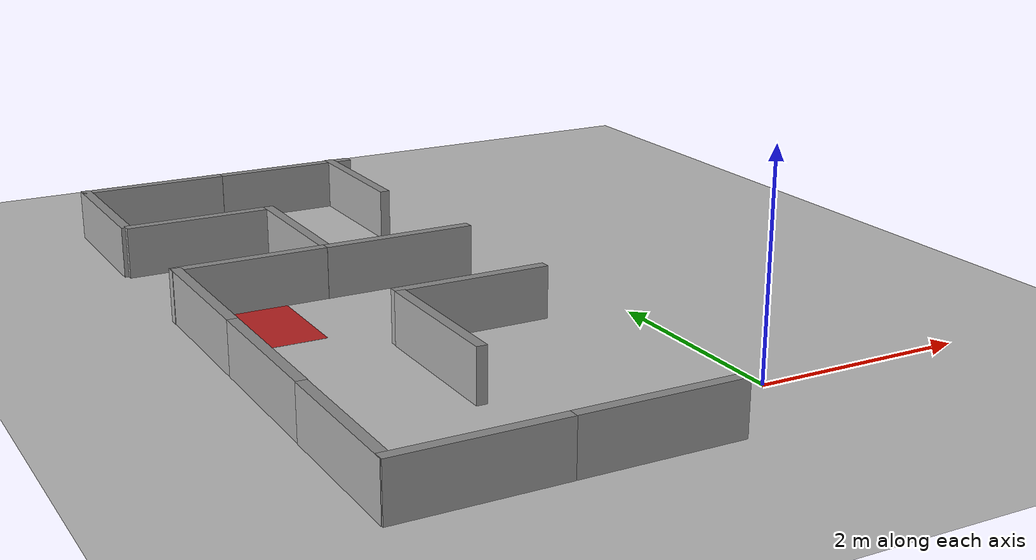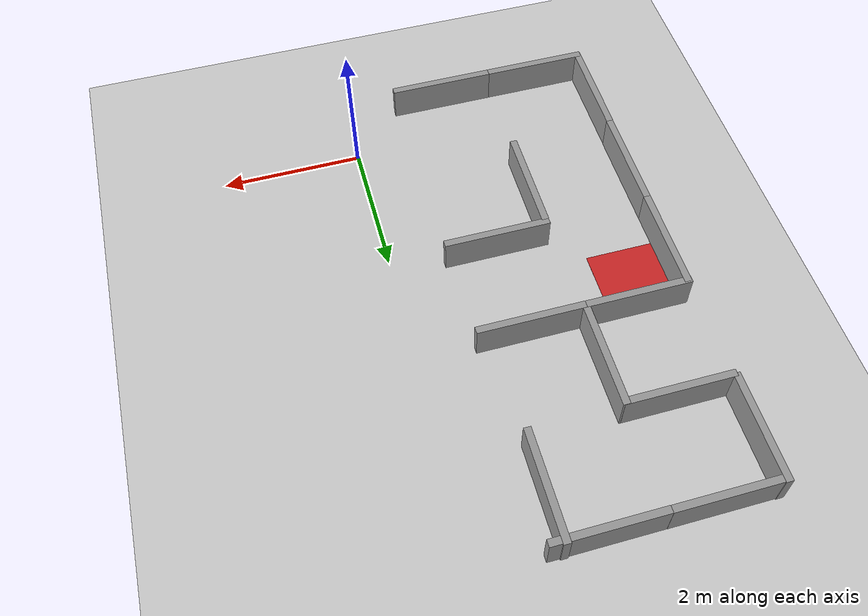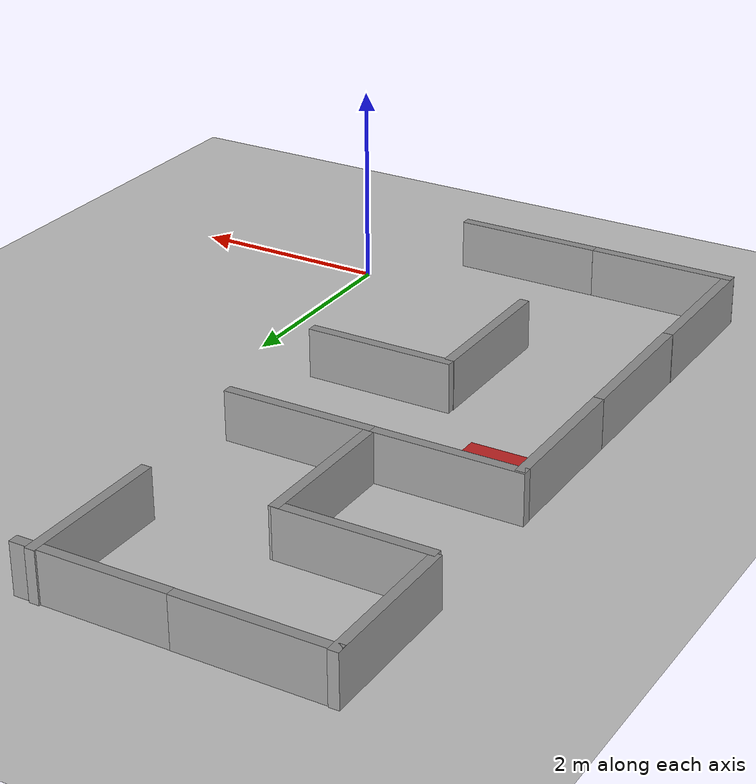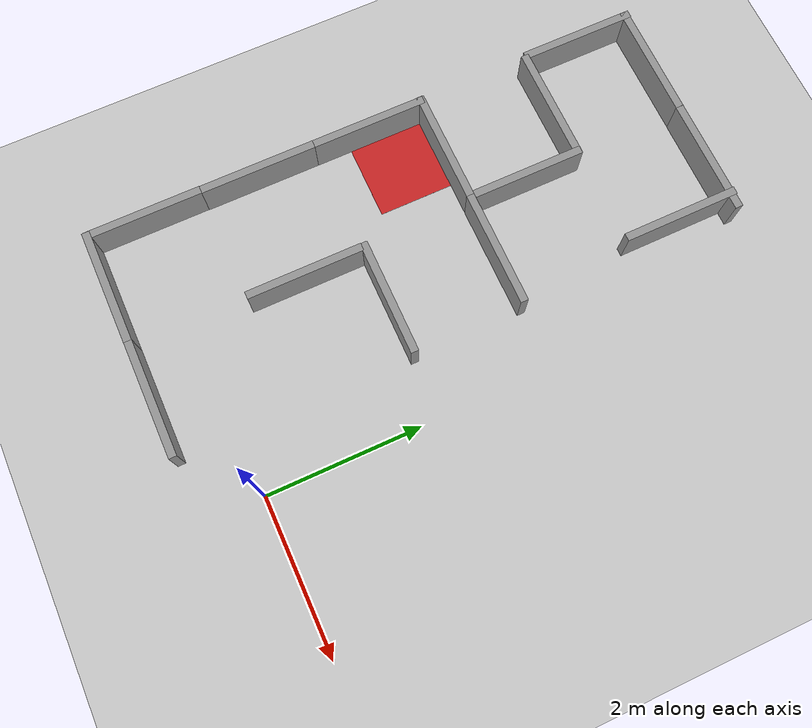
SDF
<sdf version="1.7">
 <world name="default">
  <model name="ground_plane">
   <static>1</static>
   <link name="link">
    <collision name="collision">
     <geometry><plane><normal>0 0 1</normal><size>100 100</size></plane></geometry>
     <surface>
      <contact><collide_bitmask>65535</collide_bitmask></contact>
      <friction><ode><mu>100</mu><mu2>50</mu2></ode></friction>
     </surface>
    </collision>
    <visual name="visual">
     <cast_shadows>0</cast_shadows>
     <geometry><plane><normal>0 0 1</normal><size>100 100</size></plane></geometry>
     <material>
      <script><uri>file://media/materials/scripts/gazebo.material</uri><name>Gazebo/Grey</name></script>
     </material>
    </visual>
   </link>
  </model>
  <model name="wall_big_clone_0_clone">
   <link name="link">
    <inertial>
     <mass>1</mass>
     <inertia>
      <ixx>0.166667</ixx>
      <ixy>0</ixy>
      <ixz>0</ixz>
      <iyy>0.166667</iyy>
      <iyz>0</iyz>
      <izz>0.166667</izz>
     </inertia>
    </inertial>
    <visual name="visual">
     <geometry><box><size>0.1 1.5 0.5</size></box></geometry>
     <material>
      <script><name>Gazebo/Grey</name><uri>file://media/materials/scripts/gazebo.material</uri></script>
      <shader type="pixel"><normal_map>__default__</normal_map></shader>
      <ambient>0.3 0.3 0.3 1</ambient>
      <diffuse>0.7 0.7 0.7 1</diffuse>
      <specular>0.01 0.01 0.01 1</specular>
      <emissive>0 0 0 1</emissive>
     </material>
    </visual>
    <collision name="collision">
     <geometry><box><size>0.1 1.5 0.5</size></box></geometry>
     <surface>
      <friction>
       <ode><mu>1</mu><mu2>1</mu2><fdir1>0 0 0</fdir1><slip1>0</slip1><slip2>0</slip2></ode>
       <torsional>
        <coefficient>1</coefficient>
        <patch_radius>0</patch_radius>
        <surface_radius>0</surface_radius>
        <use_patch_radius>1</use_patch_radius>
        <ode><slip>0</slip></ode>
       </torsional>
      </friction>
      <bounce><restitution_coefficient>0</restitution_coefficient><threshold>1e+06</threshold></bounce>
      <contact>
       <collide_without_contact>0</collide_without_contact>
       <collide_without_contact_bitmask>1</collide_without_contact_bitmask>
       <collide_bitmask>1</collide_bitmask>
       <ode>
        <soft_cfm>0</soft_cfm>
        <soft_erp>0.2</soft_erp>
        <kp>1e+13</kp>
        <kd>1</kd>
        <max_vel>0.01</max_vel>
        <min_depth>0</min_depth>
       </ode>
       <bullet>
        <split_impulse>1</split_impulse>
        <split_impulse_penetration_threshold>-0.01</split_impulse_penetration_threshold>
        <soft_cfm>0</soft_cfm>
        <soft_erp>0.2</soft_erp>
        <kp>1e+13</kp>
        <kd>1</kd>
       </bullet>
      </contact>
     </surface>
    </collision>
   </link>
   <static>1</static>
   <pose>-1.49254 2.24927 0.250003 1.1e-05 -0 1.5708</pose>
  </model>
  <model name="wall_big_clone_clone_0">
   <link name="link">
    <inertial>
     <mass>1</mass>
     <inertia>
      <ixx>0.166667</ixx>
      <ixy>0</ixy>
      <ixz>0</ixz>
      <iyy>0.166667</iyy>
      <iyz>0</iyz>
      <izz>0.166667</izz>
     </inertia>
    </inertial>
    <visual name="visual">
     <geometry><box><size>0.1 1.5 0.5</size></box></geometry>
     <material>
      <script><name>Gazebo/Grey</name><uri>file://media/materials/scripts/gazebo.material</uri></script>
      <shader type="pixel"><normal_map>__default__</normal_map></shader>
      <ambient>0.3 0.3 0.3 1</ambient>
      <diffuse>0.7 0.7 0.7 1</diffuse>
      <specular>0.01 0.01 0.01 1</specular>
      <emissive>0 0 0 1</emissive>
     </material>
    </visual>
    <collision name="collision">
     <geometry><box><size>0.1 1.5 0.5</size></box></geometry>
     <surface>
      <friction>
       <ode><mu>1</mu><mu2>1</mu2><fdir1>0 0 0</fdir1><slip1>0</slip1><slip2>0</slip2></ode>
       <torsional>
        <coefficient>1</coefficient>
        <patch_radius>0</patch_radius>
        <surface_radius>0</surface_radius>
        <use_patch_radius>1</use_patch_radius>
        <ode><slip>0</slip></ode>
       </torsional>
      </friction>
      <bounce><restitution_coefficient>0</restitution_coefficient><threshold>1e+06</threshold></bounce>
      <contact>
       <collide_without_contact>0</collide_without_contact>
       <collide_without_contact_bitmask>1</collide_without_contact_bitmask>
       <collide_bitmask>1</collide_bitmask>
       <ode>
        <soft_cfm>0</soft_cfm>
        <soft_erp>0.2</soft_erp>
        <kp>1e+13</kp>
        <kd>1</kd>
        <max_vel>0.01</max_vel>
        <min_depth>0</min_depth>
       </ode>
       <bullet>
        <split_impulse>1</split_impulse>
        <split_impulse_penetration_threshold>-0.01</split_impulse_penetration_threshold>
        <soft_cfm>0</soft_cfm>
        <soft_erp>0.2</soft_erp>
        <kp>1e+13</kp>
        <kd>1</kd>
       </bullet>
      </contact>
     </surface>
    </collision>
   </link>
   <static>1</static>
   <pose>-2.1978 1.46693 0.250003 1.2e-05 -0 0</pose>
  </model>
  <model name="wall_big_clone_1">
   <link name="link">
    <inertial>
     <mass>1</mass>
     <inertia>
      <ixx>0.166667</ixx>
      <ixy>0</ixy>
      <ixz>0</ixz>
      <iyy>0.166667</iyy>
      <iyz>0</iyz>
      <izz>0.166667</izz>
     </inertia>
    </inertial>
    <visual name="visual">
     <geometry><box><size>0.1 1.5 0.5</size></box></geometry>
     <material>
      <script><name>Gazebo/Grey</name><uri>file://media/materials/scripts/gazebo.material</uri></script>
      <shader type="pixel"><normal_map>__default__</normal_map></shader>
      <ambient>0.3 0.3 0.3 1</ambient>
      <diffuse>0.7 0.7 0.7 1</diffuse>
      <specular>0.01 0.01 0.01 1</specular>
      <emissive>0 0 0 1</emissive>
     </material>
    </visual>
    <collision name="collision">
     <geometry><box><size>0.1 1.5 0.5</size></box></geometry>
     <surface>
      <friction>
       <ode><mu>1</mu><mu2>1</mu2><fdir1>0 0 0</fdir1><slip1>0</slip1><slip2>0</slip2></ode>
       <torsional>
        <coefficient>1</coefficient>
        <patch_radius>0</patch_radius>
        <surface_radius>0</surface_radius>
        <use_patch_radius>1</use_patch_radius>
        <ode><slip>0</slip></ode>
       </torsional>
      </friction>
      <bounce><restitution_coefficient>0</restitution_coefficient><threshold>1e+06</threshold></bounce>
      <contact>
       <collide_without_contact>0</collide_without_contact>
       <collide_without_contact_bitmask>1</collide_without_contact_bitmask>
       <collide_bitmask>1</collide_bitmask>
       <ode>
        <soft_cfm>0</soft_cfm>
        <soft_erp>0.2</soft_erp>
        <kp>1e+13</kp>
        <kd>1</kd>
        <max_vel>0.01</max_vel>
        <min_depth>0</min_depth>
       </ode>
       <bullet>
        <split_impulse>1</split_impulse>
        <split_impulse_penetration_threshold>-0.01</split_impulse_penetration_threshold>
        <soft_cfm>0</soft_cfm>
        <soft_erp>0.2</soft_erp>
        <kp>1e+13</kp>
        <kd>1</kd>
       </bullet>
      </contact>
     </surface>
    </collision>
   </link>
   <static>1</static>
   <pose>-1.49951 -0.747119 0.250003 1.1e-05 -0 1.5708</pose>
  </model>
  <model name="wall_big_clone_2">
   <link name="link">
    <inertial>
     <mass>1</mass>
     <inertia>
      <ixx>0.166667</ixx>
      <ixy>0</ixy>
      <ixz>0</ixz>
      <iyy>0.166667</iyy>
      <iyz>0</iyz>
      <izz>0.166667</izz>
     </inertia>
    </inertial>
    <visual name="visual">
     <geometry><box><size>0.1 1.5 0.5</size></box></geometry>
     <material>
      <script><name>Gazebo/Grey</name><uri>file://media/materials/scripts/gazebo.material</uri></script>
      <shader type="pixel"><normal_map>__default__</normal_map></shader>
      <ambient>0.3 0.3 0.3 1</ambient>
      <diffuse>0.7 0.7 0.7 1</diffuse>
      <specular>0.01 0.01 0.01 1</specular>
      <emissive>0 0 0 1</emissive>
     </material>
    </visual>
    <collision name="collision">
     <geometry><box><size>0.1 1.5 0.5</size></box></geometry>
     <surface>
      <friction>
       <ode><mu>1</mu><mu2>1</mu2><fdir1>0 0 0</fdir1><slip1>0</slip1><slip2>0</slip2></ode>
       <torsional>
        <coefficient>1</coefficient>
        <patch_radius>0</patch_radius>
        <surface_radius>0</surface_radius>
        <use_patch_radius>1</use_patch_radius>
        <ode><slip>0</slip></ode>
       </torsional>
      </friction>
      <bounce><restitution_coefficient>0</restitution_coefficient><threshold>1e+06</threshold></bounce>
      <contact>
       <collide_without_contact>0</collide_without_contact>
       <collide_without_contact_bitmask>1</collide_without_contact_bitmask>
       <collide_bitmask>1</collide_bitmask>
       <ode>
        <soft_cfm>0</soft_cfm>
        <soft_erp>0.2</soft_erp>
        <kp>1e+13</kp>
        <kd>1</kd>
        <max_vel>0.01</max_vel>
        <min_depth>0</min_depth>
       </ode>
       <bullet>
        <split_impulse>1</split_impulse>
        <split_impulse_penetration_threshold>-0.01</split_impulse_penetration_threshold>
        <soft_cfm>0</soft_cfm>
        <soft_erp>0.2</soft_erp>
        <kp>1e+13</kp>
        <kd>1</kd>
       </bullet>
      </contact>
     </surface>
    </collision>
   </link>
   <static>1</static>
   <pose>-2.99702 -0.748054 0.250003 1.1e-05 -0 1.5708</pose>
  </model>
  <model name="wall_big_clone_clone_0_clone">
   <link name="link">
    <inertial>
     <mass>1</mass>
     <inertia>
      <ixx>0.166667</ixx>
      <ixy>0</ixy>
      <ixz>0</ixz>
      <iyy>0.166667</iyy>
      <iyz>0</iyz>
      <izz>0.166667</izz>
     </inertia>
    </inertial>
    <visual name="visual">
     <geometry><box><size>0.1 1.5 0.5</size></box></geometry>
     <material>
      <script><name>Gazebo/Grey</name><uri>file://media/materials/scripts/gazebo.material</uri></script>
      <shader type="pixel"><normal_map>__default__</normal_map></shader>
      <ambient>0.3 0.3 0.3 1</ambient>
      <diffuse>0.7 0.7 0.7 1</diffuse>
      <specular>0.01 0.01 0.01 1</specular>
      <emissive>0 0 0 1</emissive>
     </material>
    </visual>
    <collision name="collision">
     <geometry><box><size>0.1 1.5 0.5</size></box></geometry>
     <surface>
      <friction>
       <ode><mu>1</mu><mu2>1</mu2><fdir1>0 0 0</fdir1><slip1>0</slip1><slip2>0</slip2></ode>
       <torsional>
        <coefficient>1</coefficient>
        <patch_radius>0</patch_radius>
        <surface_radius>0</surface_radius>
        <use_patch_radius>1</use_patch_radius>
        <ode><slip>0</slip></ode>
       </torsional>
      </friction>
      <bounce><restitution_coefficient>0</restitution_coefficient><threshold>1e+06</threshold></bounce>
      <contact>
       <collide_without_contact>0</collide_without_contact>
       <collide_without_contact_bitmask>1</collide_without_contact_bitmask>
       <collide_bitmask>1</collide_bitmask>
       <ode>
        <soft_cfm>0</soft_cfm>
        <soft_erp>0.2</soft_erp>
        <kp>1e+13</kp>
        <kd>1</kd>
        <max_vel>0.01</max_vel>
        <min_depth>0</min_depth>
       </ode>
       <bullet>
        <split_impulse>1</split_impulse>
        <split_impulse_penetration_threshold>-0.01</split_impulse_penetration_threshold>
        <soft_cfm>0</soft_cfm>
        <soft_erp>0.2</soft_erp>
        <kp>1e+13</kp>
        <kd>1</kd>
       </bullet>
      </contact>
     </surface>
    </collision>
   </link>
   <static>1</static>
   <pose>-3.7015 -0.032045 0.250003 1.2e-05 -0 0</pose>
  </model>
  <model name="wall_big_clone_clone_0_clone_0">
   <link name="link">
    <inertial>
     <mass>1</mass>
     <inertia>
      <ixx>0.166667</ixx>
      <ixy>0</ixy>
      <ixz>0</ixz>
      <iyy>0.166667</iyy>
      <iyz>0</iyz>
      <izz>0.166667</izz>
     </inertia>
    </inertial>
    <visual name="visual">
     <geometry><box><size>0.1 1.5 0.5</size></box></geometry>
     <material>
      <script><name>Gazebo/Grey</name><uri>file://media/materials/scripts/gazebo.material</uri></script>
      <shader type="pixel"><normal_map>__default__</normal_map></shader>
      <ambient>0.3 0.3 0.3 1</ambient>
      <diffuse>0.7 0.7 0.7 1</diffuse>
      <specular>0.01 0.01 0.01 1</specular>
      <emissive>0 0 0 1</emissive>
     </material>
    </visual>
    <collision name="collision">
     <geometry><box><size>0.1 1.5 0.5</size></box></geometry>
     <surface>
      <friction>
       <ode><mu>1</mu><mu2>1</mu2><fdir1>0 0 0</fdir1><slip1>0</slip1><slip2>0</slip2></ode>
       <torsional>
        <coefficient>1</coefficient>
        <patch_radius>0</patch_radius>
        <surface_radius>0</surface_radius>
        <use_patch_radius>1</use_patch_radius>
        <ode><slip>0</slip></ode>
       </torsional>
      </friction>
      <bounce><restitution_coefficient>0</restitution_coefficient><threshold>1e+06</threshold></bounce>
      <contact>
       <collide_without_contact>0</collide_without_contact>
       <collide_without_contact_bitmask>1</collide_without_contact_bitmask>
       <collide_bitmask>1</collide_bitmask>
       <ode>
        <soft_cfm>0</soft_cfm>
        <soft_erp>0.2</soft_erp>
        <kp>1e+13</kp>
        <kd>1</kd>
        <max_vel>0.01</max_vel>
        <min_depth>0</min_depth>
       </ode>
       <bullet>
        <split_impulse>1</split_impulse>
        <split_impulse_penetration_threshold>-0.01</split_impulse_penetration_threshold>
        <soft_cfm>0</soft_cfm>
        <soft_erp>0.2</soft_erp>
        <kp>1e+13</kp>
        <kd>1</kd>
       </bullet>
      </contact>
     </surface>
    </collision>
   </link>
   <static>1</static>
   <pose>-3.69732 1.46586 0.250003 1.2e-05 -0 0</pose>
  </model>
  <model name="wall_big_clone_clone_0_clone_1">
   <link name="link">
    <inertial>
     <mass>1</mass>
     <inertia>
      <ixx>0.166667</ixx>
      <ixy>0</ixy>
      <ixz>0</ixz>
      <iyy>0.166667</iyy>
      <iyz>0</iyz>
      <izz>0.166667</izz>
     </inertia>
    </inertial>
    <visual name="visual">
     <geometry><box><size>0.1 1.5 0.5</size></box></geometry>
     <material>
      <script><name>Gazebo/Grey</name><uri>file://media/materials/scripts/gazebo.material</uri></script>
      <shader type="pixel"><normal_map>__default__</normal_map></shader>
      <ambient>0.3 0.3 0.3 1</ambient>
      <diffuse>0.7 0.7 0.7 1</diffuse>
      <specular>0.01 0.01 0.01 1</specular>
      <emissive>0 0 0 1</emissive>
     </material>
    </visual>
    <collision name="collision">
     <geometry><box><size>0.1 1.5 0.5</size></box></geometry>
     <surface>
      <friction>
       <ode><mu>1</mu><mu2>1</mu2><fdir1>0 0 0</fdir1><slip1>0</slip1><slip2>0</slip2></ode>
       <torsional>
        <coefficient>1</coefficient>
        <patch_radius>0</patch_radius>
        <surface_radius>0</surface_radius>
        <use_patch_radius>1</use_patch_radius>
        <ode><slip>0</slip></ode>
       </torsional>
      </friction>
      <bounce><restitution_coefficient>0</restitution_coefficient><threshold>1e+06</threshold></bounce>
      <contact>
       <collide_without_contact>0</collide_without_contact>
       <collide_without_contact_bitmask>1</collide_without_contact_bitmask>
       <collide_bitmask>1</collide_bitmask>
       <ode>
        <soft_cfm>0</soft_cfm>
        <soft_erp>0.2</soft_erp>
        <kp>1e+13</kp>
        <kd>1</kd>
        <max_vel>0.01</max_vel>
        <min_depth>0</min_depth>
       </ode>
       <bullet>
        <split_impulse>1</split_impulse>
        <split_impulse_penetration_threshold>-0.01</split_impulse_penetration_threshold>
        <soft_cfm>0</soft_cfm>
        <soft_erp>0.2</soft_erp>
        <kp>1e+13</kp>
        <kd>1</kd>
       </bullet>
      </contact>
     </surface>
    </collision>
   </link>
   <static>1</static>
   <pose>-3.69657 2.96415 0.250003 1.2e-05 -0 0</pose>
  </model>
  <model name="wall_big_clone_0_clone_clone">
   <link name="link">
    <inertial>
     <mass>1</mass>
     <inertia>
      <ixx>0.166667</ixx>
      <ixy>0</ixy>
      <ixz>0</ixz>
      <iyy>0.166667</iyy>
      <iyz>0</iyz>
      <izz>0.166667</izz>
     </inertia>
    </inertial>
    <visual name="visual">
     <geometry><box><size>0.1 1.5 0.5</size></box></geometry>
     <material>
      <script><name>Gazebo/Grey</name><uri>file://media/materials/scripts/gazebo.material</uri></script>
      <shader type="pixel"><normal_map>__default__</normal_map></shader>
      <ambient>0.3 0.3 0.3 1</ambient>
      <diffuse>0.7 0.7 0.7 1</diffuse>
      <specular>0.01 0.01 0.01 1</specular>
      <emissive>0 0 0 1</emissive>
     </material>
    </visual>
    <collision name="collision">
     <geometry><box><size>0.1 1.5 0.5</size></box></geometry>
     <surface>
      <friction>
       <ode><mu>1</mu><mu2>1</mu2><fdir1>0 0 0</fdir1><slip1>0</slip1><slip2>0</slip2></ode>
       <torsional>
        <coefficient>1</coefficient>
        <patch_radius>0</patch_radius>
        <surface_radius>0</surface_radius>
        <use_patch_radius>1</use_patch_radius>
        <ode><slip>0</slip></ode>
       </torsional>
      </friction>
      <bounce><restitution_coefficient>0</restitution_coefficient><threshold>1e+06</threshold></bounce>
      <contact>
       <collide_without_contact>0</collide_without_contact>
       <collide_without_contact_bitmask>1</collide_without_contact_bitmask>
       <collide_bitmask>1</collide_bitmask>
       <ode>
        <soft_cfm>0</soft_cfm>
        <soft_erp>0.2</soft_erp>
        <kp>1e+13</kp>
        <kd>1</kd>
        <max_vel>0.01</max_vel>
        <min_depth>0</min_depth>
       </ode>
       <bullet>
        <split_impulse>1</split_impulse>
        <split_impulse_penetration_threshold>-0.01</split_impulse_penetration_threshold>
        <soft_cfm>0</soft_cfm>
        <soft_erp>0.2</soft_erp>
        <kp>1e+13</kp>
        <kd>1</kd>
       </bullet>
      </contact>
     </surface>
    </collision>
   </link>
   <static>1</static>
   <pose>-3.00041 3.68714 0.250003 1.1e-05 -0 1.5708</pose>
  </model>
  <model name="wall_big_clone_0_clone_clone_0">
   <link name="link">
    <inertial>
     <mass>1</mass>
     <inertia>
      <ixx>0.166667</ixx>
      <ixy>0</ixy>
      <ixz>0</ixz>
      <iyy>0.166667</iyy>
      <iyz>0</iyz>
      <izz>0.166667</izz>
     </inertia>
    </inertial>
    <visual name="visual">
     <geometry><box><size>0.1 1.5 0.5</size></box></geometry>
     <material>
      <script><name>Gazebo/Grey</name><uri>file://media/materials/scripts/gazebo.material</uri></script>
      <shader type="pixel"><normal_map>__default__</normal_map></shader>
      <ambient>0.3 0.3 0.3 1</ambient>
      <diffuse>0.7 0.7 0.7 1</diffuse>
      <specular>0.01 0.01 0.01 1</specular>
      <emissive>0 0 0 1</emissive>
     </material>
    </visual>
    <collision name="collision">
     <geometry><box><size>0.1 1.5 0.5</size></box></geometry>
     <surface>
      <friction>
       <ode><mu>1</mu><mu2>1</mu2><fdir1>0 0 0</fdir1><slip1>0</slip1><slip2>0</slip2></ode>
       <torsional>
        <coefficient>1</coefficient>
        <patch_radius>0</patch_radius>
        <surface_radius>0</surface_radius>
        <use_patch_radius>1</use_patch_radius>
        <ode><slip>0</slip></ode>
       </torsional>
      </friction>
      <bounce><restitution_coefficient>0</restitution_coefficient><threshold>1e+06</threshold></bounce>
      <contact>
       <collide_without_contact>0</collide_without_contact>
       <collide_without_contact_bitmask>1</collide_without_contact_bitmask>
       <collide_bitmask>1</collide_bitmask>
       <ode>
        <soft_cfm>0</soft_cfm>
        <soft_erp>0.2</soft_erp>
        <kp>1e+13</kp>
        <kd>1</kd>
        <max_vel>0.01</max_vel>
        <min_depth>0</min_depth>
       </ode>
       <bullet>
        <split_impulse>1</split_impulse>
        <split_impulse_penetration_threshold>-0.01</split_impulse_penetration_threshold>
        <soft_cfm>0</soft_cfm>
        <soft_erp>0.2</soft_erp>
        <kp>1e+13</kp>
        <kd>1</kd>
       </bullet>
      </contact>
     </surface>
    </collision>
   </link>
   <static>1</static>
   <pose>-1.51958 3.68536 0.250003 1.1e-05 -0 1.5708</pose>
  </model>
  <model name="red_floor_marker">
   <link name="link">
    <inertial>
     <mass>1</mass>
     <inertia>
      <ixx>0.166667</ixx>
      <ixy>0</ixy>
      <ixz>0</ixz>
      <iyy>0.166667</iyy>
      <iyz>0</iyz>
      <izz>0.166667</izz>
     </inertia>
    </inertial>
    <visual name="visual">
     <geometry><box><size>1 1 0.001</size></box></geometry>
     <material>
      <script><name>Gazebo/Red</name><uri>file://media/materials/scripts/gazebo.material</uri></script>
      <shader type="pixel"><normal_map>__default__</normal_map></shader>
     </material>
    </visual>
   </link>
   <static>1</static>
   <pose>-3.18467 3.17477 0 0 -0 0</pose>
  </model>
  <model name="wall_big_clone_clone_0_clone_1_clone">
   <link name="link">
    <inertial>
     <mass>1</mass>
     <inertia>
      <ixx>0.166667</ixx>
      <ixy>0</ixy>
      <ixz>0</ixz>
      <iyy>0.166667</iyy>
      <iyz>0</iyz>
      <izz>0.166667</izz>
     </inertia>
    </inertial>
    <visual name="visual">
     <geometry><box><size>0.1 1.5 0.5</size></box></geometry>
     <material>
      <script><name>Gazebo/Grey</name><uri>file://media/materials/scripts/gazebo.material</uri></script>
      <shader type="pixel"><normal_map>__default__</normal_map></shader>
      <ambient>0.3 0.3 0.3 1</ambient>
      <diffuse>0.7 0.7 0.7 1</diffuse>
      <specular>0.01 0.01 0.01 1</specular>
      <emissive>0 0 0 1</emissive>
     </material>
    </visual>
    <collision name="collision">
     <geometry><box><size>0.1 1.5 0.5</size></box></geometry>
     <surface>
      <friction>
       <ode><mu>1</mu><mu2>1</mu2><fdir1>0 0 0</fdir1><slip1>0</slip1><slip2>0</slip2></ode>
       <torsional>
        <coefficient>1</coefficient>
        <patch_radius>0</patch_radius>
        <surface_radius>0</surface_radius>
        <use_patch_radius>1</use_patch_radius>
        <ode><slip>0</slip></ode>
       </torsional>
      </friction>
      <bounce><restitution_coefficient>0</restitution_coefficient><threshold>1e+06</threshold></bounce>
      <contact>
       <collide_without_contact>0</collide_without_contact>
       <collide_without_contact_bitmask>1</collide_without_contact_bitmask>
       <collide_bitmask>1</collide_bitmask>
       <ode>
        <soft_cfm>0</soft_cfm>
        <soft_erp>0.2</soft_erp>
        <kp>1e+13</kp>
        <kd>1</kd>
        <max_vel>0.01</max_vel>
        <min_depth>0</min_depth>
       </ode>
       <bullet>
        <split_impulse>1</split_impulse>
        <split_impulse_penetration_threshold>-0.01</split_impulse_penetration_threshold>
        <soft_cfm>0</soft_cfm>
        <soft_erp>0.2</soft_erp>
        <kp>1e+13</kp>
        <kd>1</kd>
       </bullet>
      </contact>
     </surface>
    </collision>
   </link>
   <static>1</static>
   <pose>-2.25972 4.44798 0.250003 1.2e-05 -0 0</pose>
  </model>
  <model name="wall_big_clone_0_clone_clone_clone">
   <link name="link">
    <inertial>
     <mass>1</mass>
     <inertia>
      <ixx>0.166667</ixx>
      <ixy>0</ixy>
      <ixz>0</ixz>
      <iyy>0.166667</iyy>
      <iyz>0</iyz>
      <izz>0.166667</izz>
     </inertia>
    </inertial>
    <visual name="visual">
     <geometry><box><size>0.1 1.5 0.5</size></box></geometry>
     <material>
      <script><name>Gazebo/Grey</name><uri>file://media/materials/scripts/gazebo.material</uri></script>
      <shader type="pixel"><normal_map>__default__</normal_map></shader>
      <ambient>0.3 0.3 0.3 1</ambient>
      <diffuse>0.7 0.7 0.7 1</diffuse>
      <specular>0.01 0.01 0.01 1</specular>
      <emissive>0 0 0 1</emissive>
     </material>
    </visual>
    <collision name="collision">
     <geometry><box><size>0.1 1.5 0.5</size></box></geometry>
     <surface>
      <friction>
       <ode><mu>1</mu><mu2>1</mu2><fdir1>0 0 0</fdir1><slip1>0</slip1><slip2>0</slip2></ode>
       <torsional>
        <coefficient>1</coefficient>
        <patch_radius>0</patch_radius>
        <surface_radius>0</surface_radius>
        <use_patch_radius>1</use_patch_radius>
        <ode><slip>0</slip></ode>
       </torsional>
      </friction>
      <bounce><restitution_coefficient>0</restitution_coefficient><threshold>1e+06</threshold></bounce>
      <contact>
       <collide_without_contact>0</collide_without_contact>
       <collide_without_contact_bitmask>1</collide_without_contact_bitmask>
       <collide_bitmask>1</collide_bitmask>
       <ode>
        <soft_cfm>0</soft_cfm>
        <soft_erp>0.2</soft_erp>
        <kp>1e+13</kp>
        <kd>1</kd>
        <max_vel>0.01</max_vel>
        <min_depth>0</min_depth>
       </ode>
       <bullet>
        <split_impulse>1</split_impulse>
        <split_impulse_penetration_threshold>-0.01</split_impulse_penetration_threshold>
        <soft_cfm>0</soft_cfm>
        <soft_erp>0.2</soft_erp>
        <kp>1e+13</kp>
        <kd>1</kd>
       </bullet>
      </contact>
     </surface>
    </collision>
   </link>
   <static>1</static>
   <pose>-2.9846 5.15086 0.250003 1.1e-05 -0 1.5708</pose>
  </model>
  <model name="wall_big_clone_clone_0_clone_1_clone_0">
   <link name="link">
    <inertial>
     <mass>1</mass>
     <inertia>
      <ixx>0.166667</ixx>
      <ixy>0</ixy>
      <ixz>0</ixz>
      <iyy>0.166667</iyy>
      <iyz>0</iyz>
      <izz>0.166667</izz>
     </inertia>
    </inertial>
    <visual name="visual">
     <geometry><box><size>0.1 1.5 0.5</size></box></geometry>
     <material>
      <script><name>Gazebo/Grey</name><uri>file://media/materials/scripts/gazebo.material</uri></script>
      <shader type="pixel"><normal_map>__default__</normal_map></shader>
      <ambient>0.3 0.3 0.3 1</ambient>
      <diffuse>0.7 0.7 0.7 1</diffuse>
      <specular>0.01 0.01 0.01 1</specular>
      <emissive>0 0 0 1</emissive>
     </material>
    </visual>
    <collision name="collision">
     <geometry><box><size>0.1 1.5 0.5</size></box></geometry>
     <surface>
      <friction>
       <ode><mu>1</mu><mu2>1</mu2><fdir1>0 0 0</fdir1><slip1>0</slip1><slip2>0</slip2></ode>
       <torsional>
        <coefficient>1</coefficient>
        <patch_radius>0</patch_radius>
        <surface_radius>0</surface_radius>
        <use_patch_radius>1</use_patch_radius>
        <ode><slip>0</slip></ode>
       </torsional>
      </friction>
      <bounce><restitution_coefficient>0</restitution_coefficient><threshold>1e+06</threshold></bounce>
      <contact>
       <collide_without_contact>0</collide_without_contact>
       <collide_without_contact_bitmask>1</collide_without_contact_bitmask>
       <collide_bitmask>1</collide_bitmask>
       <ode>
        <soft_cfm>0</soft_cfm>
        <soft_erp>0.2</soft_erp>
        <kp>1e+13</kp>
        <kd>1</kd>
        <max_vel>0.01</max_vel>
        <min_depth>0</min_depth>
       </ode>
       <bullet>
        <split_impulse>1</split_impulse>
        <split_impulse_penetration_threshold>-0.01</split_impulse_penetration_threshold>
        <soft_cfm>0</soft_cfm>
        <soft_erp>0.2</soft_erp>
        <kp>1e+13</kp>
        <kd>1</kd>
       </bullet>
      </contact>
     </surface>
    </collision>
   </link>
   <static>1</static>
   <pose>-3.72519 5.90389 0.250003 1.2e-05 -0 0</pose>
  </model>
  <model name="wall_big_clone_0_clone_clone_0_clone_1">
   <link name="link">
    <inertial>
     <mass>1</mass>
     <inertia>
      <ixx>0.166667</ixx>
      <ixy>0</ixy>
      <ixz>0</ixz>
      <iyy>0.166667</iyy>
      <iyz>0</iyz>
      <izz>0.166667</izz>
     </inertia>
    </inertial>
    <visual name="visual">
     <geometry><box><size>0.1 1.5 0.5</size></box></geometry>
     <material>
      <script><name>Gazebo/Grey</name><uri>file://media/materials/scripts/gazebo.material</uri></script>
      <shader type="pixel"><normal_map>__default__</normal_map></shader>
      <ambient>0.3 0.3 0.3 1</ambient>
      <diffuse>0.7 0.7 0.7 1</diffuse>
      <specular>0.01 0.01 0.01 1</specular>
      <emissive>0 0 0 1</emissive>
     </material>
    </visual>
    <collision name="collision">
     <geometry><box><size>0.1 1.5 0.5</size></box></geometry>
     <surface>
      <friction>
       <ode><mu>1</mu><mu2>1</mu2><fdir1>0 0 0</fdir1><slip1>0</slip1><slip2>0</slip2></ode>
       <torsional>
        <coefficient>1</coefficient>
        <patch_radius>0</patch_radius>
        <surface_radius>0</surface_radius>
        <use_patch_radius>1</use_patch_radius>
        <ode><slip>0</slip></ode>
       </torsional>
      </friction>
      <bounce><restitution_coefficient>0</restitution_coefficient><threshold>1e+06</threshold></bounce>
      <contact>
       <collide_without_contact>0</collide_without_contact>
       <collide_without_contact_bitmask>1</collide_without_contact_bitmask>
       <collide_bitmask>1</collide_bitmask>
       <ode>
        <soft_cfm>0</soft_cfm>
        <soft_erp>0.2</soft_erp>
        <kp>1e+13</kp>
        <kd>1</kd>
        <max_vel>0.01</max_vel>
        <min_depth>0</min_depth>
       </ode>
       <bullet>
        <split_impulse>1</split_impulse>
        <split_impulse_penetration_threshold>-0.01</split_impulse_penetration_threshold>
        <soft_cfm>0</soft_cfm>
        <soft_erp>0.2</soft_erp>
        <kp>1e+13</kp>
        <kd>1</kd>
       </bullet>
      </contact>
     </surface>
    </collision>
   </link>
   <static>1</static>
   <pose>-3.02213 6.59505 0.250003 1.1e-05 -0 1.5708</pose>
  </model>
  <model name="wall_big_clone_0_clone_clone_0_clone_2">
   <link name="link">
    <inertial>
     <mass>1</mass>
     <inertia>
      <ixx>0.166667</ixx>
      <ixy>0</ixy>
      <ixz>0</ixz>
      <iyy>0.166667</iyy>
      <iyz>0</iyz>
      <izz>0.166667</izz>
     </inertia>
    </inertial>
    <visual name="visual">
     <geometry><box><size>0.1 1.5 0.5</size></box></geometry>
     <material>
      <script><name>Gazebo/Grey</name><uri>file://media/materials/scripts/gazebo.material</uri></script>
      <shader type="pixel"><normal_map>__default__</normal_map></shader>
      <ambient>0.3 0.3 0.3 1</ambient>
      <diffuse>0.7 0.7 0.7 1</diffuse>
      <specular>0.01 0.01 0.01 1</specular>
      <emissive>0 0 0 1</emissive>
     </material>
    </visual>
    <collision name="collision">
     <geometry><box><size>0.1 1.5 0.5</size></box></geometry>
     <surface>
      <friction>
       <ode><mu>1</mu><mu2>1</mu2><fdir1>0 0 0</fdir1><slip1>0</slip1><slip2>0</slip2></ode>
       <torsional>
        <coefficient>1</coefficient>
        <patch_radius>0</patch_radius>
        <surface_radius>0</surface_radius>
        <use_patch_radius>1</use_patch_radius>
        <ode><slip>0</slip></ode>
       </torsional>
      </friction>
      <bounce><restitution_coefficient>0</restitution_coefficient><threshold>1e+06</threshold></bounce>
      <contact>
       <collide_without_contact>0</collide_without_contact>
       <collide_without_contact_bitmask>1</collide_without_contact_bitmask>
       <collide_bitmask>1</collide_bitmask>
       <ode>
        <soft_cfm>0</soft_cfm>
        <soft_erp>0.2</soft_erp>
        <kp>1e+13</kp>
        <kd>1</kd>
        <max_vel>0.01</max_vel>
        <min_depth>0</min_depth>
       </ode>
       <bullet>
        <split_impulse>1</split_impulse>
        <split_impulse_penetration_threshold>-0.01</split_impulse_penetration_threshold>
        <soft_cfm>0</soft_cfm>
        <soft_erp>0.2</soft_erp>
        <kp>1e+13</kp>
        <kd>1</kd>
       </bullet>
      </contact>
     </surface>
    </collision>
   </link>
   <static>1</static>
   <pose>-1.52205 6.59292 0.250002 1.1e-05 -0 1.5708</pose>
  </model>
  <model name="wall_big_clone_clone_0_clone_1_clone_clone">
   <link name="link">
    <inertial>
     <mass>1</mass>
     <inertia>
      <ixx>0.166667</ixx>
      <ixy>0</ixy>
      <ixz>0</ixz>
      <iyy>0.166667</iyy>
      <iyz>0</iyz>
      <izz>0.166667</izz>
     </inertia>
    </inertial>
    <visual name="visual">
     <geometry><box><size>0.1 1.5 0.5</size></box></geometry>
     <material>
      <script><name>Gazebo/Grey</name><uri>file://media/materials/scripts/gazebo.material</uri></script>
      <shader type="pixel"><normal_map>__default__</normal_map></shader>
      <ambient>0.3 0.3 0.3 1</ambient>
      <diffuse>0.7 0.7 0.7 1</diffuse>
      <specular>0.01 0.01 0.01 1</specular>
      <emissive>0 0 0 1</emissive>
     </material>
    </visual>
    <collision name="collision">
     <geometry><box><size>0.1 1.5 0.5</size></box></geometry>
     <surface>
      <friction>
       <ode><mu>1</mu><mu2>1</mu2><fdir1>0 0 0</fdir1><slip1>0</slip1><slip2>0</slip2></ode>
       <torsional>
        <coefficient>1</coefficient>
        <patch_radius>0</patch_radius>
        <surface_radius>0</surface_radius>
        <use_patch_radius>1</use_patch_radius>
        <ode><slip>0</slip></ode>
       </torsional>
      </friction>
      <bounce><restitution_coefficient>0</restitution_coefficient><threshold>1e+06</threshold></bounce>
      <contact>
       <collide_without_contact>0</collide_without_contact>
       <collide_without_contact_bitmask>1</collide_without_contact_bitmask>
       <collide_bitmask>1</collide_bitmask>
       <ode>
        <soft_cfm>0</soft_cfm>
        <soft_erp>0.2</soft_erp>
        <kp>1e+13</kp>
        <kd>1</kd>
        <max_vel>0.01</max_vel>
        <min_depth>0</min_depth>
       </ode>
       <bullet>
        <split_impulse>1</split_impulse>
        <split_impulse_penetration_threshold>-0.01</split_impulse_penetration_threshold>
        <soft_cfm>0</soft_cfm>
        <soft_erp>0.2</soft_erp>
        <kp>1e+13</kp>
        <kd>1</kd>
       </bullet>
      </contact>
     </surface>
    </collision>
   </link>
   <static>1</static>
   <pose>-0.985973 5.91033 0.250003 1.2e-05 -0 0</pose>
  </model>
 </world>
</sdf>
